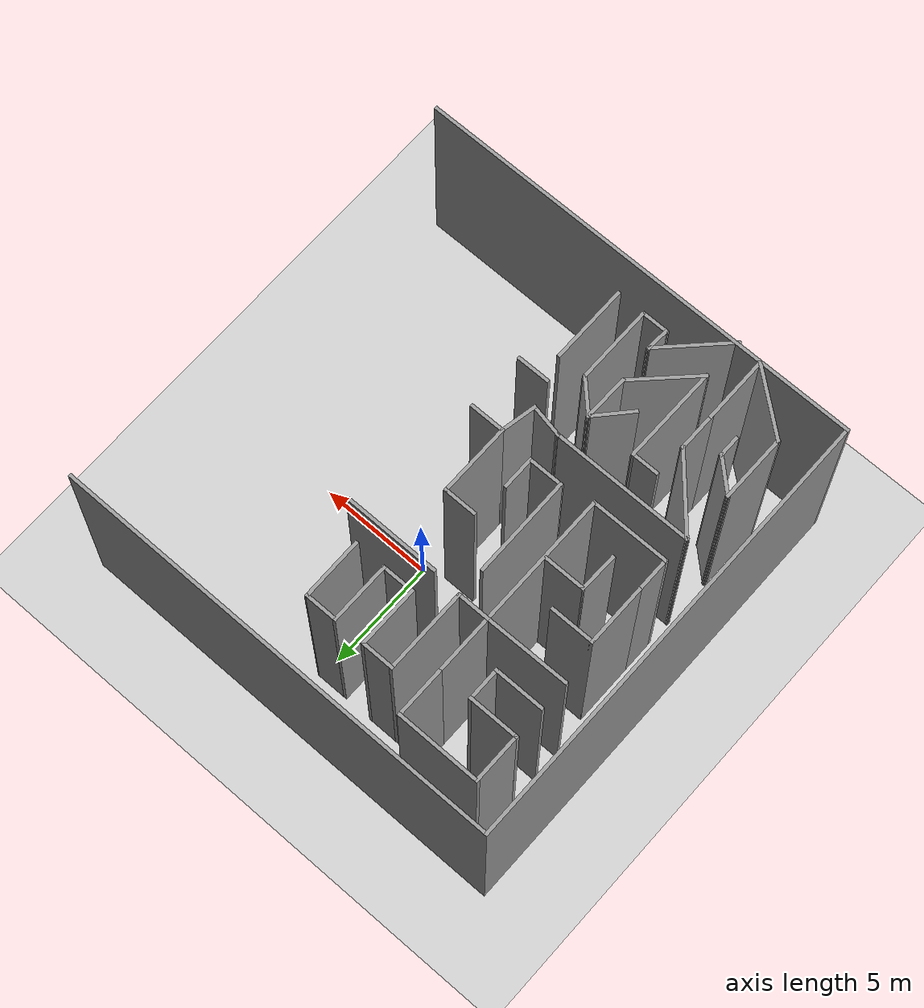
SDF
<sdf version="1.6">
 <world name="default">
  <include><uri>model://sun</uri></include>
  <model name="ground_plane">
   <static>1</static>
   <link name="link">
    <collision name="collision">
     <geometry><plane><normal>0 0 1</normal><size>100 100</size></plane></geometry>
     <surface>
      <contact><collide_bitmask>65535</collide_bitmask></contact>
      <friction><ode><mu>100</mu><mu2>50</mu2></ode></friction>
     </surface>
    </collision>
    <visual name="visual">
     <cast_shadows>0</cast_shadows>
     <geometry><plane><normal>0 0 1</normal><size>100 100</size></plane></geometry>
     <material>
      <script><uri>file://media/materials/scripts/gazebo.material</uri><name>Gazebo/Grey</name></script>
     </material>
    </visual>
   </link>
  </model>
  <model name="maze.world">
   <pose>-0.346394 -1.90508 0 0 -0 0</pose>
   <link name="Wall_0">
    <collision name="Wall_0_Collision">
     <geometry><box><size>20.15 0.15 10</size></box></geometry>
     <pose>0 0 5 0 -0 0</pose>
    </collision>
    <visual name="Wall_0_Visual">
     <pose>0 0 5 0 -0 0</pose>
     <geometry><box><size>20.15 0.15 10</size></box></geometry>
     <material>
      <script><uri>file://media/materials/scripts/gazebo.material</uri><name>Gazebo/Grey</name></script>
      <ambient>1 1 1 1</ambient>
     </material>
     <meta><layer>0</layer></meta>
    </visual>
    <pose>-0.0165 10.056 0 0 -0 0</pose>
   </link>
   <link name="Wall_100">
    <collision name="Wall_100_Collision">
     <geometry><box><size>6.25 0.15 10</size></box></geometry>
     <pose>0 0 5 0 -0 0</pose>
    </collision>
    <visual name="Wall_100_Visual">
     <pose>0 0 5 0 -0 0</pose>
     <geometry><box><size>6.25 0.15 10</size></box></geometry>
     <material>
      <script><uri>file://media/materials/scripts/gazebo.material</uri><name>Gazebo/Grey</name></script>
      <ambient>1 1 1 1</ambient>
     </material>
     <meta><layer>0</layer></meta>
    </visual>
    <pose>-5.2635 -2.82601 0 0 -0 0</pose>
   </link>
   <link name="Wall_101">
    <collision name="Wall_101_Collision">
     <geometry><box><size>1.52533 0.15 10</size></box></geometry>
     <pose>0 0 5 0 -0 0</pose>
    </collision>
    <visual name="Wall_101_Visual">
     <pose>0 0 5 0 -0 0</pose>
     <geometry><box><size>1.52533 0.15 10</size></box></geometry>
     <material>
      <script><uri>file://media/materials/scripts/gazebo.material</uri><name>Gazebo/Grey</name></script>
      <ambient>1 1 1 1</ambient>
     </material>
     <meta><layer>0</layer></meta>
    </visual>
    <pose>-1.5385 -2.95851 0 0 -0 -0.193832</pose>
   </link>
   <link name="Wall_102">
    <collision name="Wall_102_Collision">
     <geometry><box><size>1.64901 0.15 10</size></box></geometry>
     <pose>0 0 5 0 -0 0</pose>
    </collision>
    <visual name="Wall_102_Visual">
     <pose>0 0 5 0 -0 0</pose>
     <geometry><box><size>1.64901 0.15 10</size></box></geometry>
     <material>
      <script><uri>file://media/materials/scripts/gazebo.material</uri><name>Gazebo/Grey</name></script>
      <ambient>1 1 1 1</ambient>
     </material>
     <meta><layer>0</layer></meta>
    </visual>
    <pose>-0.7195 -2.35552 0 0 -0 1.37746</pose>
   </link>
   <link name="Wall_104">
    <collision name="Wall_104_Collision">
     <geometry><box><size>3.69217 0.15 10</size></box></geometry>
     <pose>0 0 5 0 -0 0</pose>
    </collision>
    <visual name="Wall_104_Visual">
     <pose>0 0 5 0 -0 0</pose>
     <geometry><box><size>3.69217 0.15 10</size></box></geometry>
     <material>
      <script><uri>file://media/materials/scripts/gazebo.material</uri><name>Gazebo/Grey</name></script>
      <ambient>1 1 1 1</ambient>
     </material>
     <meta><layer>0</layer></meta>
    </visual>
    <pose>-7.1295 -4.14302 0 0 -0 -0.838527</pose>
   </link>
   <link name="Wall_105">
    <collision name="Wall_105_Collision">
     <geometry><box><size>1.75 0.15 10</size></box></geometry>
     <pose>0 0 5 0 -0 0</pose>
    </collision>
    <visual name="Wall_105_Visual">
     <pose>0 0 5 0 -0 0</pose>
     <geometry><box><size>1.75 0.15 10</size></box></geometry>
     <material>
      <script><uri>file://media/materials/scripts/gazebo.material</uri><name>Gazebo/Grey</name></script>
      <ambient>1 1 1 1</ambient>
     </material>
     <meta><layer>0</layer></meta>
    </visual>
    <pose>-5.9455 -6.26002 0 0 -0 -1.5708</pose>
   </link>
   <link name="Wall_106">
    <collision name="Wall_106_Collision">
     <geometry><box><size>3 0.15 10</size></box></geometry>
     <pose>0 0 5 0 -0 0</pose>
    </collision>
    <visual name="Wall_106_Visual">
     <pose>0 0 5 0 -0 0</pose>
     <geometry><box><size>3 0.15 10</size></box></geometry>
     <material>
      <script><uri>file://media/materials/scripts/gazebo.material</uri><name>Gazebo/Grey</name></script>
      <ambient>1 1 1 1</ambient>
     </material>
     <meta><layer>0</layer></meta>
    </visual>
    <pose>-5.9455 -8.48502 0 0 -0 -1.5708</pose>
   </link>
   <link name="Wall_11">
    <collision name="Wall_11_Collision">
     <geometry><box><size>2.25 0.15 10</size></box></geometry>
     <pose>0 0 5 0 -0 0</pose>
    </collision>
    <visual name="Wall_11_Visual">
     <pose>0 0 5 0 -0 0</pose>
     <geometry><box><size>2.25 0.15 10</size></box></geometry>
     <material>
      <script><uri>file://media/materials/scripts/gazebo.material</uri><name>Gazebo/Grey</name></script>
      <ambient>1 1 1 1</ambient>
     </material>
     <meta><layer>0</layer></meta>
    </visual>
    <pose>-8.5155 7.80598 0 0 -0 -1.5708</pose>
   </link>
   <link name="Wall_110">
    <collision name="Wall_110_Collision">
     <geometry><box><size>1.76243 0.15 10</size></box></geometry>
     <pose>0 0 5 0 -0 0</pose>
    </collision>
    <visual name="Wall_110_Visual">
     <pose>0 0 5 0 -0 0</pose>
     <geometry><box><size>1.76243 0.15 10</size></box></geometry>
     <material>
      <script><uri>file://media/materials/scripts/gazebo.material</uri><name>Gazebo/Grey</name></script>
      <ambient>1 1 1 1</ambient>
     </material>
     <meta><layer>0</layer></meta>
    </visual>
    <pose>-7.7785 -5.61402 0 0 -0 -0.7389</pose>
   </link>
   <link name="Wall_112">
    <collision name="Wall_112_Collision">
     <geometry><box><size>3.01561 0.15 10</size></box></geometry>
     <pose>0 0 5 0 -0 0</pose>
    </collision>
    <visual name="Wall_112_Visual">
     <pose>0 0 5 0 -0 0</pose>
     <geometry><box><size>3.01561 0.15 10</size></box></geometry>
     <material>
      <script><uri>file://media/materials/scripts/gazebo.material</uri><name>Gazebo/Grey</name></script>
      <ambient>1 1 1 1</ambient>
     </material>
     <meta><layer>0</layer></meta>
    </visual>
    <pose>-8.382 -6.50401 0 0 -0 -1.57603</pose>
   </link>
   <link name="Wall_113">
    <collision name="Wall_113_Collision">
     <geometry><box><size>3.29125 0.15 10</size></box></geometry>
     <pose>0 0 5 0 -0 0</pose>
    </collision>
    <visual name="Wall_113_Visual">
     <pose>0 0 5 0 -0 0</pose>
     <geometry><box><size>3.29125 0.15 10</size></box></geometry>
     <material>
      <script><uri>file://media/materials/scripts/gazebo.material</uri><name>Gazebo/Grey</name></script>
      <ambient>1 1 1 1</ambient>
     </material>
     <meta><layer>0</layer></meta>
    </visual>
    <pose>-7.1675 -8.92352 0 0 -0 -0.679166</pose>
   </link>
   <link name="Wall_115">
    <collision name="Wall_115_Collision">
     <geometry><box><size>1 0.15 10</size></box></geometry>
     <pose>0 0 5 0 -0 0</pose>
    </collision>
    <visual name="Wall_115_Visual">
     <pose>0 0 5 0 -0 0</pose>
     <geometry><box><size>1 0.15 10</size></box></geometry>
     <material>
      <script><uri>file://media/materials/scripts/gazebo.material</uri><name>Gazebo/Grey</name></script>
      <ambient>1 1 1 1</ambient>
     </material>
     <meta><layer>0</layer></meta>
    </visual>
    <pose>-7.1825 -6.58202 0 0 -0 -1.5708</pose>
   </link>
   <link name="Wall_117">
    <collision name="Wall_117_Collision">
     <geometry><box><size>1.25 0.15 10</size></box></geometry>
     <pose>0 0 5 0 -0 0</pose>
    </collision>
    <visual name="Wall_117_Visual">
     <pose>0 0 5 0 -0 0</pose>
     <geometry><box><size>1.25 0.15 10</size></box></geometry>
     <material>
      <script><uri>file://media/materials/scripts/gazebo.material</uri><name>Gazebo/Grey</name></script>
      <ambient>1 1 1 1</ambient>
     </material>
     <meta><layer>0</layer></meta>
    </visual>
    <pose>-5.3135 -4.05701 0 0 -0 0</pose>
   </link>
   <link name="Wall_118">
    <collision name="Wall_118_Collision">
     <geometry><box><size>4.30043 0.15 10</size></box></geometry>
     <pose>0 0 5 0 -0 0</pose>
    </collision>
    <visual name="Wall_118_Visual">
     <pose>0 0 5 0 -0 0</pose>
     <geometry><box><size>4.30043 0.15 10</size></box></geometry>
     <material>
      <script><uri>file://media/materials/scripts/gazebo.material</uri><name>Gazebo/Grey</name></script>
      <ambient>1 1 1 1</ambient>
     </material>
     <meta><layer>0</layer></meta>
    </visual>
    <pose>-4.777 -6.13202 0 0 -0 -1.5773</pose>
   </link>
   <link name="Wall_119">
    <collision name="Wall_119_Collision">
     <geometry><box><size>3.23166 0.15 10</size></box></geometry>
     <pose>0 0 5 0 -0 0</pose>
    </collision>
    <visual name="Wall_119_Visual">
     <pose>0 0 5 0 -0 0</pose>
     <geometry><box><size>3.23166 0.15 10</size></box></geometry>
     <material>
      <script><uri>file://media/materials/scripts/gazebo.material</uri><name>Gazebo/Grey</name></script>
      <ambient>1 1 1 1</ambient>
     </material>
     <meta><layer>0</layer></meta>
    </visual>
    <pose>-3.694 -7.12401 0 0 -0 0.779204</pose>
   </link>
   <link name="Wall_12">
    <collision name="Wall_12_Collision">
     <geometry><box><size>2.26035 0.15 10</size></box></geometry>
     <pose>0 0 5 0 -0 0</pose>
    </collision>
    <visual name="Wall_12_Visual">
     <pose>0 0 5 0 -0 0</pose>
     <geometry><box><size>2.26035 0.15 10</size></box></geometry>
     <material>
      <script><uri>file://media/materials/scripts/gazebo.material</uri><name>Gazebo/Grey</name></script>
      <ambient>1 1 1 1</ambient>
     </material>
     <meta><layer>0</layer></meta>
    </visual>
    <pose>-7.4605 6.75598 0 0 -0 0</pose>
   </link>
   <link name="Wall_120">
    <collision name="Wall_120_Collision">
     <geometry><box><size>2.0765 0.15 10</size></box></geometry>
     <pose>0 0 5 0 -0 0</pose>
    </collision>
    <visual name="Wall_120_Visual">
     <pose>0 0 5 0 -0 0</pose>
     <geometry><box><size>2.0765 0.15 10</size></box></geometry>
     <material>
      <script><uri>file://media/materials/scripts/gazebo.material</uri><name>Gazebo/Grey</name></script>
      <ambient>1 1 1 1</ambient>
     </material>
     <meta><layer>0</layer></meta>
    </visual>
    <pose>-2.5845 -5.07801 0 0 -0 1.5573</pose>
   </link>
   <link name="Wall_121">
    <collision name="Wall_121_Collision">
     <geometry><box><size>1.75 0.15 10</size></box></geometry>
     <pose>0 0 5 0 -0 0</pose>
    </collision>
    <visual name="Wall_121_Visual">
     <pose>0 0 5 0 -0 0</pose>
     <geometry><box><size>1.75 0.15 10</size></box></geometry>
     <material>
      <script><uri>file://media/materials/scripts/gazebo.material</uri><name>Gazebo/Grey</name></script>
      <ambient>1 1 1 1</ambient>
     </material>
     <meta><layer>0</layer></meta>
    </visual>
    <pose>-2.006 -4.68051 0 0 -0 -0.785398</pose>
   </link>
   <link name="Wall_122">
    <collision name="Wall_122_Collision">
     <geometry><box><size>3.5 0.15 10</size></box></geometry>
     <pose>0 0 5 0 -0 0</pose>
    </collision>
    <visual name="Wall_122_Visual">
     <pose>0 0 5 0 -0 0</pose>
     <geometry><box><size>3.5 0.15 10</size></box></geometry>
     <material>
      <script><uri>file://media/materials/scripts/gazebo.material</uri><name>Gazebo/Grey</name></script>
      <ambient>1 1 1 1</ambient>
     </material>
     <meta><layer>0</layer></meta>
    </visual>
    <pose>-1.4405 -6.92102 0 0 -0 -1.5708</pose>
   </link>
   <link name="Wall_123">
    <collision name="Wall_123_Collision">
     <geometry><box><size>1.25 0.15 10</size></box></geometry>
     <pose>0 0 5 0 -0 0</pose>
    </collision>
    <visual name="Wall_123_Visual">
     <pose>0 0 5 0 -0 0</pose>
     <geometry><box><size>1.25 0.15 10</size></box></geometry>
     <material>
      <script><uri>file://media/materials/scripts/gazebo.material</uri><name>Gazebo/Grey</name></script>
      <ambient>1 1 1 1</ambient>
     </material>
     <meta><layer>0</layer></meta>
    </visual>
    <pose>-1.9905 -8.59602 0 0 -0 3.14159</pose>
   </link>
   <link name="Wall_124">
    <collision name="Wall_124_Collision">
     <geometry><box><size>1.09165 0.15 10</size></box></geometry>
     <pose>0 0 5 0 -0 0</pose>
    </collision>
    <visual name="Wall_124_Visual">
     <pose>0 0 5 0 -0 0</pose>
     <geometry><box><size>1.09165 0.15 10</size></box></geometry>
     <material>
      <script><uri>file://media/materials/scripts/gazebo.material</uri><name>Gazebo/Grey</name></script>
      <ambient>1 1 1 1</ambient>
     </material>
     <meta><layer>0</layer></meta>
    </visual>
    <pose>-2.5115 -8.12602 0 0 -0 1.50917</pose>
   </link>
   <link name="Wall_126">
    <collision name="Wall_126_Collision">
     <geometry><box><size>1.9337 0.15 10</size></box></geometry>
     <pose>0 0 5 0 -0 0</pose>
    </collision>
    <visual name="Wall_126_Visual">
     <pose>0 0 5 0 -0 0</pose>
     <geometry><box><size>1.9337 0.15 10</size></box></geometry>
     <material>
      <script><uri>file://media/materials/scripts/gazebo.material</uri><name>Gazebo/Grey</name></script>
      <ambient>1 1 1 1</ambient>
     </material>
     <meta><layer>0</layer></meta>
    </visual>
    <pose>-3.173 -4.77352 0 0 -0 0.830605</pose>
   </link>
   <link name="Wall_128">
    <collision name="Wall_128_Collision">
     <geometry><box><size>3.5 0.15 10</size></box></geometry>
     <pose>0 0 5 0 -0 0</pose>
    </collision>
    <visual name="Wall_128_Visual">
     <pose>0 0 5 0 -0 0</pose>
     <geometry><box><size>3.5 0.15 10</size></box></geometry>
     <material>
      <script><uri>file://media/materials/scripts/gazebo.material</uri><name>Gazebo/Grey</name></script>
      <ambient>1 1 1 1</ambient>
     </material>
     <meta><layer>0</layer></meta>
    </visual>
    <pose>-3.667 -8.84051 0 0 -0 -2.35619</pose>
   </link>
   <link name="Wall_13">
    <collision name="Wall_13_Collision">
     <geometry><box><size>1.51899 0.15 10</size></box></geometry>
     <pose>0 0 5 0 -0 0</pose>
    </collision>
    <visual name="Wall_13_Visual">
     <pose>0 0 5 0 -0 0</pose>
     <geometry><box><size>1.51899 0.15 10</size></box></geometry>
     <material>
      <script><uri>file://media/materials/scripts/gazebo.material</uri><name>Gazebo/Grey</name></script>
      <ambient>1 1 1 1</ambient>
     </material>
     <meta><layer>0</layer></meta>
    </visual>
    <pose>-6.4055 6.07149 0 0 -0 -1.5708</pose>
   </link>
   <link name="Wall_14">
    <collision name="Wall_14_Collision">
     <geometry><box><size>2.25 0.15 10</size></box></geometry>
     <pose>0 0 5 0 -0 0</pose>
    </collision>
    <visual name="Wall_14_Visual">
     <pose>0 0 5 0 -0 0</pose>
     <geometry><box><size>2.25 0.15 10</size></box></geometry>
     <material>
      <script><uri>file://media/materials/scripts/gazebo.material</uri><name>Gazebo/Grey</name></script>
      <ambient>1 1 1 1</ambient>
     </material>
     <meta><layer>0</layer></meta>
    </visual>
    <pose>-7.4555 5.38698 0 0 -0 3.14159</pose>
   </link>
   <link name="Wall_153">
    <collision name="Wall_153_Collision">
     <geometry><box><size>1.5 0.15 10</size></box></geometry>
     <pose>0 0 5 0 -0 0</pose>
    </collision>
    <visual name="Wall_153_Visual">
     <pose>0 0 5 0 -0 0</pose>
     <geometry><box><size>1.5 0.15 10</size></box></geometry>
     <material>
      <script><uri>file://media/materials/scripts/gazebo.material</uri><name>Gazebo/Grey</name></script>
      <ambient>1 1 1 1</ambient>
     </material>
     <meta><layer>0</layer></meta>
    </visual>
    <pose>0.1455 -4.19102 0 0 -0 0</pose>
   </link>
   <link name="Wall_156">
    <collision name="Wall_156_Collision">
     <geometry><box><size>3.5 0.15 10</size></box></geometry>
     <pose>0 0 5 0 -0 0</pose>
    </collision>
    <visual name="Wall_156_Visual">
     <pose>0 0 5 0 -0 0</pose>
     <geometry><box><size>3.5 0.15 10</size></box></geometry>
     <material>
      <script><uri>file://media/materials/scripts/gazebo.material</uri><name>Gazebo/Grey</name></script>
      <ambient>1 1 1 1</ambient>
     </material>
     <meta><layer>0</layer></meta>
    </visual>
    <pose>-0.2085 -6.93201 0 0 -0 -1.5708</pose>
   </link>
   <link name="Wall_17">
    <collision name="Wall_17_Collision">
     <geometry><box><size>3.75 0.15 10</size></box></geometry>
     <pose>0 0 5 0 -0 0</pose>
    </collision>
    <visual name="Wall_17_Visual">
     <pose>0 0 5 0 -0 0</pose>
     <geometry><box><size>3.75 0.15 10</size></box></geometry>
     <material>
      <script><uri>file://media/materials/scripts/gazebo.material</uri><name>Gazebo/Grey</name></script>
      <ambient>1 1 1 1</ambient>
     </material>
     <meta><layer>0</layer></meta>
    </visual>
    <pose>-6.7155 8.85599 0 0 -0 0</pose>
   </link>
   <link name="Wall_18">
    <collision name="Wall_18_Collision">
     <geometry><box><size>2.25 0.15 10</size></box></geometry>
     <pose>0 0 5 0 -0 0</pose>
    </collision>
    <visual name="Wall_18_Visual">
     <pose>0 0 5 0 -0 0</pose>
     <geometry><box><size>2.25 0.15 10</size></box></geometry>
     <material>
      <script><uri>file://media/materials/scripts/gazebo.material</uri><name>Gazebo/Grey</name></script>
      <ambient>1 1 1 1</ambient>
     </material>
     <meta><layer>0</layer></meta>
    </visual>
    <pose>-4.9155 7.80598 0 0 -0 -1.5708</pose>
   </link>
   <link name="Wall_19">
    <collision name="Wall_19_Collision">
     <geometry><box><size>2.75 0.15 10</size></box></geometry>
     <pose>0 0 5 0 -0 0</pose>
    </collision>
    <visual name="Wall_19_Visual">
     <pose>0 0 5 0 -0 0</pose>
     <geometry><box><size>2.75 0.15 10</size></box></geometry>
     <material>
      <script><uri>file://media/materials/scripts/gazebo.material</uri><name>Gazebo/Grey</name></script>
      <ambient>1 1 1 1</ambient>
     </material>
     <meta><layer>0</layer></meta>
    </visual>
    <pose>-4.9155 5.45599 0 0 -0 -1.5708</pose>
   </link>
   <link name="Wall_20">
    <collision name="Wall_20_Collision">
     <geometry><box><size>1.5 0.15 10</size></box></geometry>
     <pose>0 0 5 0 -0 0</pose>
    </collision>
    <visual name="Wall_20_Visual">
     <pose>0 0 5 0 -0 0</pose>
     <geometry><box><size>1.5 0.15 10</size></box></geometry>
     <material>
      <script><uri>file://media/materials/scripts/gazebo.material</uri><name>Gazebo/Grey</name></script>
      <ambient>1 1 1 1</ambient>
     </material>
     <meta><layer>0</layer></meta>
    </visual>
    <pose>-4.2405 4.15598 0 0 -0 0</pose>
   </link>
   <link name="Wall_21">
    <collision name="Wall_21_Collision">
     <geometry><box><size>3.75 0.15 10</size></box></geometry>
     <pose>0 0 5 0 -0 0</pose>
    </collision>
    <visual name="Wall_21_Visual">
     <pose>0 0 5 0 -0 0</pose>
     <geometry><box><size>3.75 0.15 10</size></box></geometry>
     <material>
      <script><uri>file://media/materials/scripts/gazebo.material</uri><name>Gazebo/Grey</name></script>
      <ambient>1 1 1 1</ambient>
     </material>
     <meta><layer>0</layer></meta>
    </visual>
    <pose>-3.5655 5.95599 0 0 -0 1.5708</pose>
   </link>
   <link name="Wall_22">
    <collision name="Wall_22_Collision">
     <geometry><box><size>1.5 0.15 10</size></box></geometry>
     <pose>0 0 5 0 -0 0</pose>
    </collision>
    <visual name="Wall_22_Visual">
     <pose>0 0 5 0 -0 0</pose>
     <geometry><box><size>1.5 0.15 10</size></box></geometry>
     <material>
      <script><uri>file://media/materials/scripts/gazebo.material</uri><name>Gazebo/Grey</name></script>
      <ambient>1 1 1 1</ambient>
     </material>
     <meta><layer>0</layer></meta>
    </visual>
    <pose>-2.8905 7.75598 0 0 -0 0</pose>
   </link>
   <link name="Wall_23">
    <collision name="Wall_23_Collision">
     <geometry><box><size>2.75 0.15 10</size></box></geometry>
     <pose>0 0 5 0 -0 0</pose>
    </collision>
    <visual name="Wall_23_Visual">
     <pose>0 0 5 0 -0 0</pose>
     <geometry><box><size>2.75 0.15 10</size></box></geometry>
     <material>
      <script><uri>file://media/materials/scripts/gazebo.material</uri><name>Gazebo/Grey</name></script>
      <ambient>1 1 1 1</ambient>
     </material>
     <meta><layer>0</layer></meta>
    </visual>
    <pose>-2.2155 6.45599 0 0 -0 -1.5708</pose>
   </link>
   <link name="Wall_24">
    <collision name="Wall_24_Collision">
     <geometry><box><size>1.5 0.15 10</size></box></geometry>
     <pose>0 0 5 0 -0 0</pose>
    </collision>
    <visual name="Wall_24_Visual">
     <pose>0 0 5 0 -0 0</pose>
     <geometry><box><size>1.5 0.15 10</size></box></geometry>
     <material>
      <script><uri>file://media/materials/scripts/gazebo.material</uri><name>Gazebo/Grey</name></script>
      <ambient>1 1 1 1</ambient>
     </material>
     <meta><layer>0</layer></meta>
    </visual>
    <pose>-1.5405 5.15598 0 0 -0 0</pose>
   </link>
   <link name="Wall_25">
    <collision name="Wall_25_Collision">
     <geometry><box><size>2.75 0.15 10</size></box></geometry>
     <pose>0 0 5 0 -0 0</pose>
    </collision>
    <visual name="Wall_25_Visual">
     <pose>0 0 5 0 -0 0</pose>
     <geometry><box><size>2.75 0.15 10</size></box></geometry>
     <material>
      <script><uri>file://media/materials/scripts/gazebo.material</uri><name>Gazebo/Grey</name></script>
      <ambient>1 1 1 1</ambient>
     </material>
     <meta><layer>0</layer></meta>
    </visual>
    <pose>-0.865499 6.45599 0 0 -0 1.5708</pose>
   </link>
   <link name="Wall_26">
    <collision name="Wall_26_Collision">
     <geometry><box><size>1.5 0.15 10</size></box></geometry>
     <pose>0 0 5 0 -0 0</pose>
    </collision>
    <visual name="Wall_26_Visual">
     <pose>0 0 5 0 -0 0</pose>
     <geometry><box><size>1.5 0.15 10</size></box></geometry>
     <material>
      <script><uri>file://media/materials/scripts/gazebo.material</uri><name>Gazebo/Grey</name></script>
      <ambient>1 1 1 1</ambient>
     </material>
     <meta><layer>0</layer></meta>
    </visual>
    <pose>-0.1905 7.75598 0 0 -0 0</pose>
   </link>
   <link name="Wall_27">
    <collision name="Wall_27_Collision">
     <geometry><box><size>2.76984 0.15 10</size></box></geometry>
     <pose>0 0 5 0 -0 0</pose>
    </collision>
    <visual name="Wall_27_Visual">
     <pose>0 0 5 0 -0 0</pose>
     <geometry><box><size>2.76984 0.15 10</size></box></geometry>
     <material>
      <script><uri>file://media/materials/scripts/gazebo.material</uri><name>Gazebo/Grey</name></script>
      <ambient>1 1 1 1</ambient>
     </material>
     <meta><layer>0</layer></meta>
    </visual>
    <pose>0.4945 6.44598 0 0 -0 -1.56316</pose>
   </link>
   <link name="Wall_3">
    <collision name="Wall_3_Collision">
     <geometry><box><size>20.15 0.15 10</size></box></geometry>
     <pose>0 0 5 0 -0 0</pose>
    </collision>
    <visual name="Wall_3_Visual">
     <pose>0 0 5 0 -0 0</pose>
     <geometry><box><size>20.15 0.15 10</size></box></geometry>
     <material>
      <script><uri>file://media/materials/scripts/gazebo.material</uri><name>Gazebo/Grey</name></script>
      <ambient>1 1 1 1</ambient>
     </material>
     <meta><layer>0</layer></meta>
    </visual>
    <pose>-0.0165 -9.94402 0 0 -0 0</pose>
   </link>
   <link name="Wall_56">
    <collision name="Wall_56_Collision">
     <geometry><box><size>4.25 0.15 10</size></box></geometry>
     <pose>0 0 5 0 -0 0</pose>
    </collision>
    <visual name="Wall_56_Visual">
     <pose>0 0 5 0 -0 0</pose>
     <geometry><box><size>4.25 0.15 10</size></box></geometry>
     <material>
      <script><uri>file://media/materials/scripts/gazebo.material</uri><name>Gazebo/Grey</name></script>
      <ambient>1 1 1 1</ambient>
     </material>
     <meta><layer>0</layer></meta>
    </visual>
    <pose>-0.2155 4.05598 0 0 -0 0</pose>
   </link>
   <link name="Wall_58">
    <collision name="Wall_58_Collision">
     <geometry><box><size>3.76415 0.15 10</size></box></geometry>
     <pose>0 0 5 0 -0 0</pose>
    </collision>
    <visual name="Wall_58_Visual">
     <pose>0 0 5 0 -0 0</pose>
     <geometry><box><size>3.76415 0.15 10</size></box></geometry>
     <material>
      <script><uri>file://media/materials/scripts/gazebo.material</uri><name>Gazebo/Grey</name></script>
      <ambient>1 1 1 1</ambient>
     </material>
     <meta><layer>0</layer></meta>
    </visual>
    <pose>-6.7225 4.13848 0 0 -0 0.009684</pose>
   </link>
   <link name="Wall_59">
    <collision name="Wall_59_Collision">
     <geometry><box><size>6 0.15 10</size></box></geometry>
     <pose>0 0 5 0 -0 0</pose>
    </collision>
    <visual name="Wall_59_Visual">
     <pose>0 0 5 0 -0 0</pose>
     <geometry><box><size>6 0.15 10</size></box></geometry>
     <material>
      <script><uri>file://media/materials/scripts/gazebo.material</uri><name>Gazebo/Grey</name></script>
      <ambient>1 1 1 1</ambient>
     </material>
     <meta><layer>0</layer></meta>
    </visual>
    <pose>-4.9155 1.23098 0 0 -0 -1.5708</pose>
   </link>
   <link name="Wall_60">
    <collision name="Wall_60_Collision">
     <geometry><box><size>3.5 0.15 10</size></box></geometry>
     <pose>0 0 5 0 -0 0</pose>
    </collision>
    <visual name="Wall_60_Visual">
     <pose>0 0 5 0 -0 0</pose>
     <geometry><box><size>3.5 0.15 10</size></box></geometry>
     <material>
      <script><uri>file://media/materials/scripts/gazebo.material</uri><name>Gazebo/Grey</name></script>
      <ambient>1 1 1 1</ambient>
     </material>
     <meta><layer>0</layer></meta>
    </visual>
    <pose>-6.5905 -1.69402 0 0 -0 3.14159</pose>
   </link>
   <link name="Wall_61">
    <collision name="Wall_61_Collision">
     <geometry><box><size>1.5 0.15 10</size></box></geometry>
     <pose>0 0 5 0 -0 0</pose>
    </collision>
    <visual name="Wall_61_Visual">
     <pose>0 0 5 0 -0 0</pose>
     <geometry><box><size>1.5 0.15 10</size></box></geometry>
     <material>
      <script><uri>file://media/materials/scripts/gazebo.material</uri><name>Gazebo/Grey</name></script>
      <ambient>1 1 1 1</ambient>
     </material>
     <meta><layer>0</layer></meta>
    </visual>
    <pose>-8.2655 -1.01902 0 0 -0 1.5708</pose>
   </link>
   <link name="Wall_63">
    <collision name="Wall_63_Collision">
     <geometry><box><size>1.89943 0.15 10</size></box></geometry>
     <pose>0 0 5 0 -0 0</pose>
    </collision>
    <visual name="Wall_63_Visual">
     <pose>0 0 5 0 -0 0</pose>
     <geometry><box><size>1.89943 0.15 10</size></box></geometry>
     <material>
      <script><uri>file://media/materials/scripts/gazebo.material</uri><name>Gazebo/Grey</name></script>
      <ambient>1 1 1 1</ambient>
     </material>
     <meta><layer>0</layer></meta>
    </visual>
    <pose>-5.8545 1.06098 0 0 -0 3.14159</pose>
   </link>
   <link name="Wall_65">
    <collision name="Wall_65_Collision">
     <geometry><box><size>2.75 0.15 10</size></box></geometry>
     <pose>0 0 5 0 -0 0</pose>
    </collision>
    <visual name="Wall_65_Visual">
     <pose>0 0 5 0 -0 0</pose>
     <geometry><box><size>2.75 0.15 10</size></box></geometry>
     <material>
      <script><uri>file://media/materials/scripts/gazebo.material</uri><name>Gazebo/Grey</name></script>
      <ambient>1 1 1 1</ambient>
     </material>
     <meta><layer>0</layer></meta>
    </visual>
    <pose>-8.2655 1.05598 0 0 -0 1.5708</pose>
   </link>
   <link name="Wall_67">
    <collision name="Wall_67_Collision">
     <geometry><box><size>2 0.15 10</size></box></geometry>
     <pose>0 0 5 0 -0 0</pose>
    </collision>
    <visual name="Wall_67_Visual">
     <pose>0 0 5 0 -0 0</pose>
     <geometry><box><size>2 0.15 10</size></box></geometry>
     <material>
      <script><uri>file://media/materials/scripts/gazebo.material</uri><name>Gazebo/Grey</name></script>
      <ambient>1 1 1 1</ambient>
     </material>
     <meta><layer>0</layer></meta>
    </visual>
    <pose>-7.3405 2.35598 0 0 -0 0</pose>
   </link>
   <link name="Wall_69">
    <collision name="Wall_69_Collision">
     <geometry><box><size>1.75 0.15 10</size></box></geometry>
     <pose>0 0 5 0 -0 0</pose>
    </collision>
    <visual name="Wall_69_Visual">
     <pose>0 0 5 0 -0 0</pose>
     <geometry><box><size>1.75 0.15 10</size></box></geometry>
     <material>
      <script><uri>file://media/materials/scripts/gazebo.material</uri><name>Gazebo/Grey</name></script>
      <ambient>1 1 1 1</ambient>
     </material>
     <meta><layer>0</layer></meta>
    </visual>
    <pose>-6.7495 0.260984 0 0 -0 -1.59579</pose>
   </link>
   <link name="Wall_7">
    <collision name="Wall_7_Collision">
     <geometry><box><size>20.15 0.15 10</size></box></geometry>
     <pose>0 0 5 0 -0 0</pose>
    </collision>
    <visual name="Wall_7_Visual">
     <pose>0 0 5 0 -0 0</pose>
     <geometry><box><size>20.15 0.15 10</size></box></geometry>
     <material>
      <script><uri>file://media/materials/scripts/gazebo.material</uri><name>Gazebo/Grey</name></script>
      <ambient>1 1 1 1</ambient>
     </material>
     <meta><layer>0</layer></meta>
    </visual>
    <pose>-10.0165 0.055984 0 0 -0 1.5708</pose>
   </link>
   <link name="Wall_90">
    <collision name="Wall_90_Collision">
     <geometry><box><size>1.5 0.15 10</size></box></geometry>
     <pose>0 0 5 0 -0 0</pose>
    </collision>
    <visual name="Wall_90_Visual">
     <pose>0 0 5 0 -0 0</pose>
     <geometry><box><size>1.5 0.15 10</size></box></geometry>
     <material>
      <script><uri>file://media/materials/scripts/gazebo.material</uri><name>Gazebo/Grey</name></script>
      <ambient>1 1 1 1</ambient>
     </material>
     <meta><layer>0</layer></meta>
    </visual>
    <pose>0.1995 -1.62002 0 0 -0 3.14159</pose>
   </link>
   <link name="Wall_91">
    <collision name="Wall_91_Collision">
     <geometry><box><size>0.25 0.15 2.5</size></box></geometry>
     <pose>0 0 1.25 0 -0 0</pose>
    </collision>
    <visual name="Wall_91_Visual">
     <pose>0 0 1.25 0 -0 0</pose>
     <geometry><box><size>0.25 0.15 2.5</size></box></geometry>
     <material>
      <script><uri>file://media/materials/scripts/gazebo.material</uri><name>Gazebo/Grey</name></script>
      <ambient>1 1 1 1</ambient>
     </material>
     <meta><layer>0</layer></meta>
    </visual>
    <pose>-0.5255 -1.62002 0 0 -0 3.14159</pose>
   </link>
   <link name="Wall_92">
    <collision name="Wall_92_Collision">
     <geometry><box><size>3.25 0.15 10</size></box></geometry>
     <pose>0 0 5 0 -0 0</pose>
    </collision>
    <visual name="Wall_92_Visual">
     <pose>0 0 5 0 -0 0</pose>
     <geometry><box><size>3.25 0.15 10</size></box></geometry>
     <material>
      <script><uri>file://media/materials/scripts/gazebo.material</uri><name>Gazebo/Grey</name></script>
      <ambient>1 1 1 1</ambient>
     </material>
     <meta><layer>0</layer></meta>
    </visual>
    <pose>-0.5755 -0.070016 0 0 -0 1.5708</pose>
   </link>
   <link name="Wall_93">
    <collision name="Wall_93_Collision">
     <geometry><box><size>1.5 0.15 10</size></box></geometry>
     <pose>0 0 5 0 -0 0</pose>
    </collision>
    <visual name="Wall_93_Visual">
     <pose>0 0 5 0 -0 0</pose>
     <geometry><box><size>1.5 0.15 10</size></box></geometry>
     <material>
      <script><uri>file://media/materials/scripts/gazebo.material</uri><name>Gazebo/Grey</name></script>
      <ambient>1 1 1 1</ambient>
     </material>
     <meta><layer>0</layer></meta>
    </visual>
    <pose>-1.2505 1.47999 0 0 -0 3.14159</pose>
   </link>
   <link name="Wall_95">
    <collision name="Wall_95_Collision">
     <geometry><box><size>4.46105 0.15 10</size></box></geometry>
     <pose>0 0 5 0 -0 0</pose>
    </collision>
    <visual name="Wall_95_Visual">
     <pose>0 0 5 0 -0 0</pose>
     <geometry><box><size>4.46105 0.15 10</size></box></geometry>
     <material>
      <script><uri>file://media/materials/scripts/gazebo.material</uri><name>Gazebo/Grey</name></script>
      <ambient>1 1 1 1</ambient>
     </material>
     <meta><layer>0</layer></meta>
    </visual>
    <pose>-3.5595 0.731484 0 0 -0 -1.56616</pose>
   </link>
   <link name="Wall_96">
    <collision name="Wall_96_Collision">
     <geometry><box><size>1.5 0.15 10</size></box></geometry>
     <pose>0 0 5 0 -0 0</pose>
    </collision>
    <visual name="Wall_96_Visual">
     <pose>0 0 5 0 -0 0</pose>
     <geometry><box><size>1.5 0.15 10</size></box></geometry>
     <material>
      <script><uri>file://media/materials/scripts/gazebo.material</uri><name>Gazebo/Grey</name></script>
      <ambient>1 1 1 1</ambient>
     </material>
     <meta><layer>0</layer></meta>
    </visual>
    <pose>-2.8745 -1.42402 0 0 -0 0</pose>
   </link>
   <link name="Wall_97">
    <collision name="Wall_97_Collision">
     <geometry><box><size>0.25 0.15 2.5</size></box></geometry>
     <pose>0 0 1.25 0 -0 0</pose>
    </collision>
    <visual name="Wall_97_Visual">
     <pose>0 0 1.25 0 -0 0</pose>
     <geometry><box><size>0.25 0.15 2.5</size></box></geometry>
     <material>
      <script><uri>file://media/materials/scripts/gazebo.material</uri><name>Gazebo/Grey</name></script>
      <ambient>1 1 1 1</ambient>
     </material>
     <meta><layer>0</layer></meta>
    </visual>
    <pose>-2.1495 -1.42402 0 0 -0 0</pose>
   </link>
   <link name="Wall_98">
    <collision name="Wall_98_Collision">
     <geometry><box><size>1.5 0.15 10</size></box></geometry>
     <pose>0 0 5 0 -0 0</pose>
    </collision>
    <visual name="Wall_98_Visual">
     <pose>0 0 5 0 -0 0</pose>
     <geometry><box><size>1.5 0.15 10</size></box></geometry>
     <material>
      <script><uri>file://media/materials/scripts/gazebo.material</uri><name>Gazebo/Grey</name></script>
      <ambient>1 1 1 1</ambient>
     </material>
     <meta><layer>0</layer></meta>
    </visual>
    <pose>-2.0995 -0.749016 0 0 -0 1.5708</pose>
   </link>
   <static>1</static>
  </model>
 </world>
</sdf>
